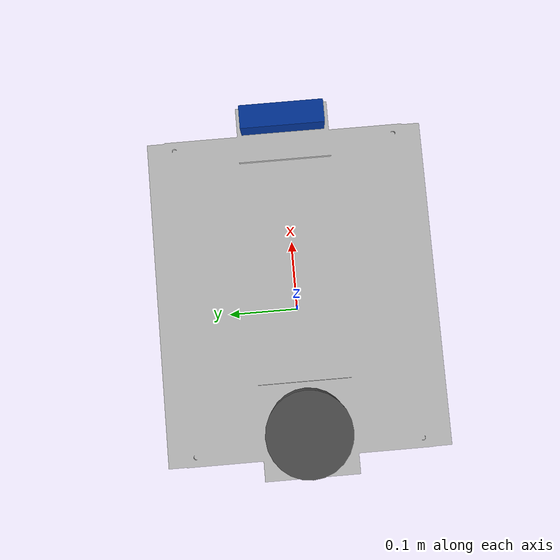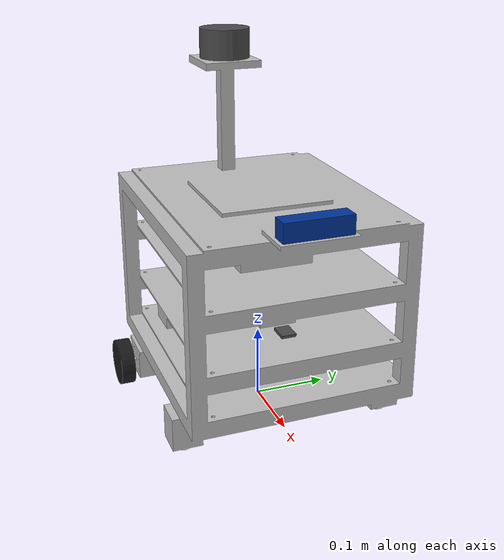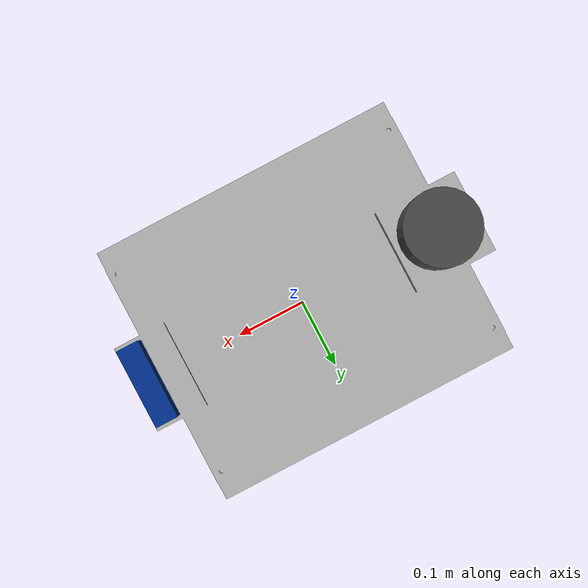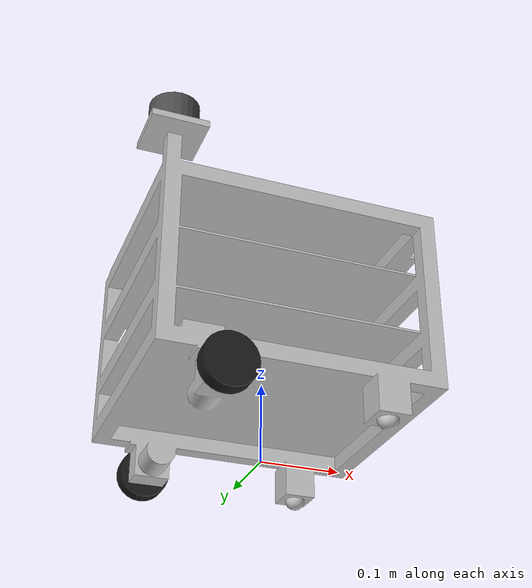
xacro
<?xml version="1.0"?>
<!--
  ⭐ 메인 파일! 모든 모듈을 include로 조립!

  이 파일만 보면 로봇 전체 구조가 한눈에 → 세부 사항은 각 모듈 파일에

  빌드 명령:
    xacro my_robot.urdf.xacro > my_robot.urdf → Xacro → 순수 URDF로 변환!
-->

<robot name="my_mobile_robot" xmlns:xacro="http://www.ros.org/wiki/xacro">

  <!-- 변수 정의 (모든 수치) -->
  <xacro:include filename="$(find my_robot_description)/urdf/robot_properties.xacro"/>

  <!-- 본체 (base_footprint + base_link) -->
  <xacro:include filename="$(find my_robot_description)/urdf/robot_base.xacro"/>

  <!-- 바퀴 (left + right) -->
  <xacro:include filename="$(find my_robot_description)/urdf/robot_wheels.xacro"/>

  <!-- 센서 (LiDAR + Camera + IMU) -->
  <xacro:include filename="$(find my_robot_description)/urdf/robot_sensors.xacro"/>

  <!-- Gazebo 플러그인 (제어 + 센서 시뮬) -->
  <xacro:include filename="$(find my_robot_description)/urdf/robot_gazebo.xacro"/>

</robot>

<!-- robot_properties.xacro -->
<robot xmlns:xacro="http://www.ros.org/wiki/xacro">

  <!-- 프레임 치수 (m 단위!) -->

  <!-- X방향 350mm = 0.350m (전후 길이) -->
  <xacro:property name="frame_length" value="0.350"/>
  <!-- Y방향 300mm = 0.300m (좌우 폭) -->
  <xacro:property name="frame_width" value="0.300"/>
  <!-- Z방향 240mm = 0.240m (높이) -->
  <xacro:property name="frame_height" value="0.240"/>
  <!-- 지상고 57.5mm = 0.0575m -->
  <xacro:property name="ground_clearance" value="0.0575"/>

  <!-- 바퀴 치수 -->

  <!-- 바퀴 반지름 32.5mm -->
  <xacro:property name="wheel_radius" value="0.0325"/>
  <!-- 바퀴 폭 20mm -->
  <xacro:property name="wheel_width" value="0.020"/>
  <!-- 좌우 바퀴 사이 거리 345mm -->
  <xacro:property name="wheel_separation" value="0.345"/>
  <!-- 바퀴 X 오프셋: 후방 100mm -->
  <xacro:property name="wheel_x_offset" value="-0.100"/>
  <!-- 바퀴 Z 오프셋: 하판 아래 25mm -->
  <xacro:property name="wheel_z_offset" value="-0.025"/>

  <!-- 질량 (kg) -->

  <xacro:property name="base_mass" value="4.79"/>
  <xacro:property name="wheel_mass" value="0.080"/>
  <xacro:property name="lidar_mass" value="0.170"/>
  <xacro:property name="camera_mass" value="0.072"/>
  <xacro:property name="imu_mass" value="0.010"/>

  <!-- 센서 위치 -->

  <xacro:property name="lidar_x" value="-0.130"/>
  <xacro:property name="lidar_y" value="0.0"/>
  <xacro:property name="lidar_z" value="0.424"/>

  <xacro:property name="camera_x" value="0.1875"/>
  <xacro:property name="camera_y" value="0.0"/>
  <xacro:property name="camera_z" value="0.2605"/>

  <xacro:property name="imu_x" value="0.100"/>
  <xacro:property name="imu_y" value="0.0"/>
  <xacro:property name="imu_z" value="0.085"/>

  <!-- CoM (무게중심) -->

  <xacro:property name="base_com_x" value="-0.017"/>
  <xacro:property name="base_com_y" value="0.0"/>
  <xacro:property name="base_com_z" value="0.106"/>

  <!-- 관성 모멘트 매크로 -->

  <!-- 박스 관성 매크로 -->
  <xacro:macro name="box_inertia" params="m x y z">
    <inertial>
      <mass value="${m}"/>
      <inertia ixx="${(1/12)*m*(y*y+z*z)}" ixy="0.0" ixz="0.0"
               iyy="${(1/12)*m*(x*x+z*z)}" iyz="0.0"
               izz="${(1/12)*m*(x*x+y*y)}"/>
    </inertial>
  </xacro:macro>

  <!-- 원기둥 관성 매크로 -->
  <xacro:macro name="cylinder_inertia" params="m r h">
    <inertial>
      <mass value="${m}"/>
      <inertia ixx="${(1/12)*m*(3*r*r+h*h)}" ixy="0.0" ixz="0.0"
               iyy="${(1/12)*m*(3*r*r+h*h)}" iyz="0.0"
               izz="${(1/2)*m*r*r}"/>
    </inertial>
  </xacro:macro>

</robot>

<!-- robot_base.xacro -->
<robot xmlns:xacro="http://www.ros.org/wiki/xacro">

  <!-- base_footprint (가상 Link) -->

  <link name="base_footprint"/>

  <joint name="base_joint" type="fixed">
    <parent link="base_footprint"/>
    <child link="base_link"/>
    <origin xyz="0.0 0.0 ${ground_clearance}" rpy="0.0 0.0 0.0"/>
    <!--
      ${ground_clearance} = 0.0575 → 하드코딩 대신 변수 사용 → 바퀴 크기 바꾸면 이 값도 자동 연동 가능
    -->
  </joint>

  <!-- base_link -->

  <link name="base_link">
    <visual>
      <origin xyz="0.0 0.0 0.0" rpy="0.0 0.0 0.0"/>
      <geometry>
        <mesh filename="package://my_robot_description/meshes/base_link.stl"
              scale="0.001 0.001 0.001"/>
      </geometry>
      <material name="silver">
        <color rgba="0.75 0.75 0.75 1.0"/>
      </material>
    </visual>

    <collision>
      <origin xyz="0.0 0.0 ${frame_height/2}" rpy="0.0 0.0 0.0"/>
      <geometry>
        <box size="${frame_length} ${frame_width} ${frame_height}"/>
      </geometry>
    </collision>

    <inertial>
      <origin xyz="${base_com_x} ${base_com_y} ${base_com_z}"
              rpy="0.0 0.0 0.0"/>
      <mass value="${base_mass}"/>
      <inertia ixx="${(1/12)*base_mass*(frame_width**2+frame_height**2)}"
               ixy="0.0" ixz="0.0"
               iyy="${(1/12)*base_mass*(frame_length**2+frame_height**2)}"
               iyz="0.0"
               izz="${(1/12)*base_mass*(frame_length**2+frame_width**2)}"/>
      <!--
        ** = 거듭제곱 연산자 (Xacro에서 사용 가능)
            관성 모멘트를 공식으로 자동 계산 → 프레임 크기 바꾸면 관성도 자동 업데이트
      -->
    </inertial>
  </link>

</robot>

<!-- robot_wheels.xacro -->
<!--
  ⭐ left_wheel과 right_wheel은 Y좌표 부호만 다름
    → 매크로 1개로 양쪽 바퀴를 모두 생성
-->
<robot xmlns:xacro="http://www.ros.org/wiki/xacro">

  <!-- 바퀴 매크로 정의 -->

  <xacro:macro name="wheel" params="prefix y_reflect">
    <!--
      params:
        prefix: "left" 또는 "right" (이름 접두사)
        y_reflect: +1 (왼쪽) 또는 -1 (오른쪽) (Y방향 반전)

      이 매크로를 호출하면 Joint + Link가 자동 생성
    -->

    <joint name="${prefix}_wheel_joint" type="continuous">
      <!--
        ${prefix}_wheel_joint
            → "left_wheel_joint" 또는 "right_wheel_joint"
            → 문자열 조합이 가능
      -->
      <parent link="base_link"/>
      <child link="${prefix}_wheel"/>
      <origin xyz="${wheel_x_offset} ${y_reflect * wheel_separation / 2} ${wheel_z_offset}" rpy="0.0 0.0 0.0"/>
      <!--
        Y 위치 계산:
          left:  +1 * 0.345/2 = +0.172.5
          right: -1 * 0.345/2 = -0.172.5
            → 하나의 수식으로 양쪽 모두 처리!
      -->
      <axis xyz="0 1 0"/>
    </joint>

    <link name="${prefix}_wheel">
      <visual>
        <origin xyz="0.0 0.0 0.0" rpy="${pi/2} 0.0 0.0"/>
        <!--
          ${pi/2} = 1.5708...
            Xacro는 pi를 내장 상수로 제공
            → 1.5708 하드코딩 불필요
        -->
        <geometry>
          <cylinder radius="${wheel_radius}" length="${wheel_width}"/>
        </geometry>
        <material name="black">
          <color rgba="0.1 0.1 0.1 1.0"/>
        </material>
      </visual>

      <collision>
        <origin xyz="0.0 0.0 0.0" rpy="${pi/2} 0.0 0.0"/>
        <geometry>
          <cylinder radius="${wheel_radius}" length="${wheel_width}"/>
        </geometry>
      </collision>

      <xacro:cylinder_inertia m="${wheel_mass}"
                               r="${wheel_radius}"
                               h="${wheel_width}"/>
      <!--
        ⭐ 관성 모멘트 매크로 호출 → robot_properties.xacro에서 정의한 매크로
      -->
    </link>

    <!-- Gazebo 마찰 설정도 매크로 안에 -->
    <gazebo reference="${prefix}_wheel">
      <material>Gazebo/Black</material>
      <mu1>1.0</mu1>
      <mu2>1.0</mu2>
      <kp>1000000.0</kp>
      <kd>10.0</kd>
    </gazebo>

  </xacro:macro>

  <!-- 매크로 호출 — 바퀴 2개 생성! -->

  <xacro:wheel prefix="left" y_reflect="1"/>
  <!--
    이 한 줄로 생성되는 것:
    ✅ left_wheel_joint (continuous, Y=+0.155)
    ✅ left_wheel (link with visual/collision/inertial)
    ✅ Gazebo 마찰 설정
  -->

  <xacro:wheel prefix="right" y_reflect="-1"/>
  <!--
    이 한 줄로 생성되는 것:
    ✅ right_wheel_joint (continuous, Y=-0.155)
    ✅ right_wheel (link with visual/collision/inertial)
    ✅ Gazebo 마찰 설정
  -->

</robot>

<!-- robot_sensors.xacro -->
<robot xmlns:xacro="http://www.ros.org/wiki/xacro">

  <!-- LiDAR -->

  <joint name="lidar_joint" type="fixed">
    <parent link="base_link"/>
    <child link="lidar_link"/>
    <origin xyz="${lidar_x} ${lidar_y} ${lidar_z}" rpy="0.0 0.0 0.0"/>
  </joint>

  <link name="lidar_link">
    <visual>
      <geometry>
        <cylinder radius="0.035" length="0.041"/>
      </geometry>
      <material name="dark_grey">
        <color rgba="0.3 0.3 0.3 1.0"/>
      </material>
    </visual>
    <collision>
      <geometry>
        <cylinder radius="0.035" length="0.041"/>
      </geometry>
    </collision>
    <xacro:cylinder_inertia m="${lidar_mass}" r="0.035" h="0.041"/>
  </link>

  <!-- Camera (RealSense D435) -->

  <joint name="camera_joint" type="fixed">
    <parent link="base_link"/>
    <child link="camera_link"/>
    <origin xyz="${camera_x} ${camera_y} ${camera_z}" rpy="0.0 0.0 0.0"/>
  </joint>

  <link name="camera_link">
    <visual>
      <geometry>
        <box size="0.025 0.090 0.025"/>
      </geometry>
      <material name="blue">
        <color rgba="0.0 0.2 0.6 1.0"/>
      </material>
    </visual>
    <collision>
      <geometry>
        <box size="0.025 0.090 0.025"/>
      </geometry>
    </collision>
    <xacro:box_inertia m="${camera_mass}" x="0.025" y="0.090" z="0.025"/>
  </link>

  <joint name="camera_optical_joint" type="fixed">
    <parent link="camera_link"/>
    <child link="camera_optical_frame"/>
    <origin xyz="0.0 0.0 0.0" rpy="${-pi/2} 0.0 ${-pi/2}"/>
    <!--
      rpy 변환:
        Roll = -π/2: Y→Z 변환
        Yaw  = -π/2: X→Y 변환
        결과: 로봇좌표 → 카메라 광학 좌표
    -->
  </joint>

  <!-- 가상 Link: 좌표 변환용, 물리적 실체 없음 -->
  <link name="camera_optical_frame"/>

  <!-- IMU (BNO055) -->

  <joint name="imu_joint" type="fixed">
    <parent link="base_link"/>
    <child link="imu_link"/>
    <origin xyz="${imu_x} ${imu_y} ${imu_z}" rpy="0.0 0.0 0.0"/>
  </joint>

  <link name="imu_link">
    <visual>
      <geometry>
        <box size="0.027 0.020 0.004"/>
      </geometry>
      <material name="dark_grey">
        <color rgba="0.3 0.3 0.3 1.0"/>
      </material>
    </visual>
    <collision>
      <geometry>
        <box size="0.027 0.020 0.004"/>
      </geometry>
    </collision>
    <inertial>
      <mass value="${imu_mass}"/>
      <inertia ixx="1e-7" ixy="0.0" ixz="0.0"
               iyy="1e-7" iyz="0.0"
               izz="1e-7"/>
      <!--
        IMU는 10g으로 극히 가벼움
        최소값 1e-7로 설정 (Gazebo 에러 방지)
      -->
    </inertial>
  </link>

</robot>
